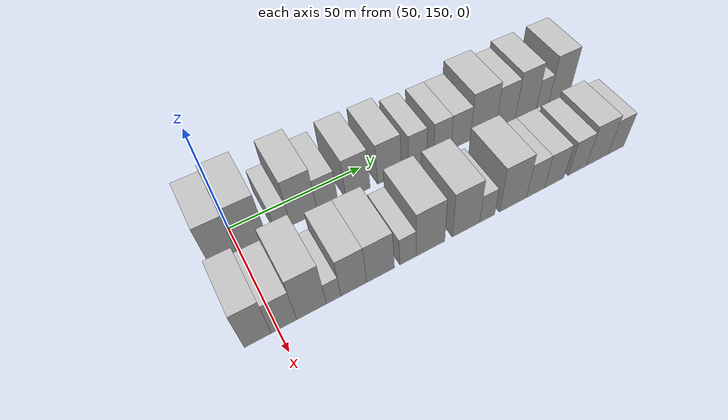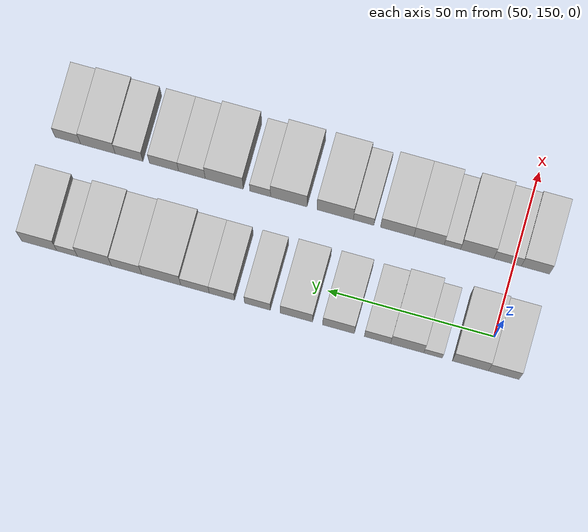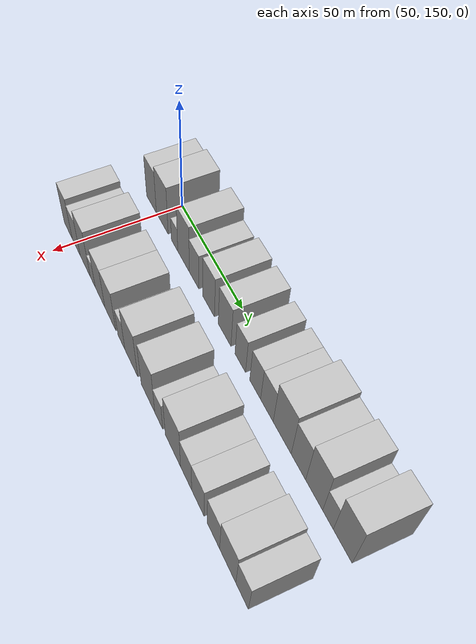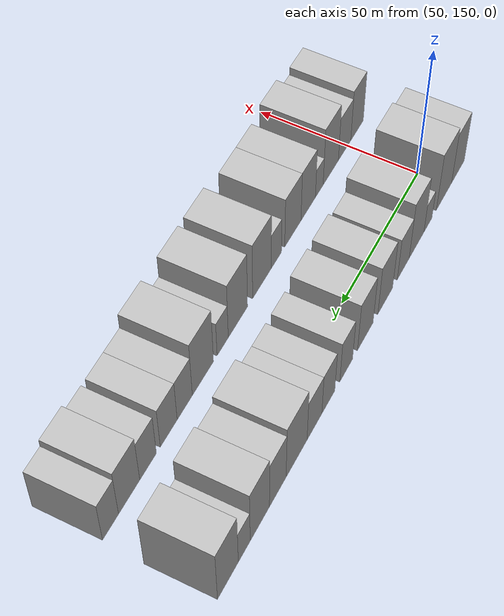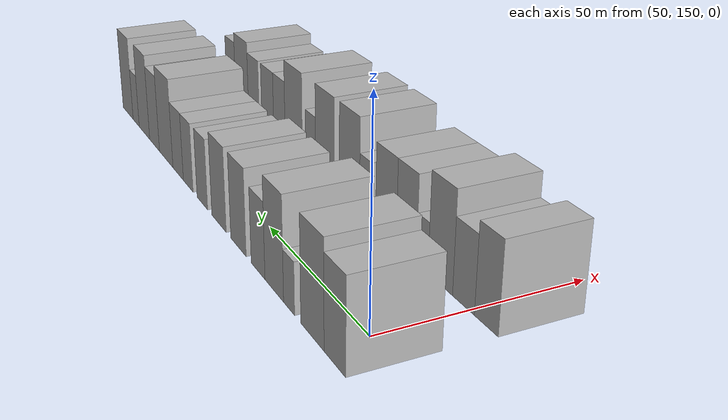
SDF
<sdf version="1.6">
 <world name="default">
  <model name="building_48">
   <static>1</static>
   <pose>50.0000 144.4742 0 0.000000 0.000000 0.000000</pose>
   <link name="link">
    <pose>0 0 10.50 0 0 0</pose>
    <collision name="collision"><geometry><box><size>20.0000 9.2283 21.0000</size></box></geometry></collision>
    <visual name="visual">
     <cast_shadows>0</cast_shadows>
     <geometry><box><size>20.0000 9.2283 21.0000</size></box></geometry>
     <material>
      <script>
       <uri>model://HANNAS_wall/materials/scripts</uri>
       <uri>model://HANNAS_wall/materials/textures</uri>
       <name>vrc/HANNAS_wall</name>
      </script>
     </material>
    </visual>
   </link>
  </model>
  <model name="building_49">
   <static>1</static>
   <pose>50.0000 154.4830 0 0.000000 0.000000 0.000000</pose>
   <link name="link">
    <pose>0 0 12.00 0 0 0</pose>
    <collision name="collision"><geometry><box><size>20.0000 10.7894 24.0000</size></box></geometry></collision>
    <visual name="visual">
     <cast_shadows>0</cast_shadows>
     <geometry><box><size>20.0000 10.7894 24.0000</size></box></geometry>
     <material>
      <script>
       <uri>model://HANNAS_wall/materials/scripts</uri>
       <uri>model://HANNAS_wall/materials/textures</uri>
       <name>vrc/HANNAS_wall</name>
      </script>
     </material>
    </visual>
   </link>
  </model>
  <model name="building_50">
   <static>1</static>
   <pose>50.0000 165.6741 0 0.000000 0.000000 0.000000</pose>
   <link name="link">
    <pose>0 0 6.00 0 0 0</pose>
    <collision name="collision"><geometry><box><size>20.0000 5.5927 12.0000</size></box></geometry></collision>
    <visual name="visual">
     <cast_shadows>0</cast_shadows>
     <geometry><box><size>20.0000 5.5927 12.0000</size></box></geometry>
     <material>
      <script>
       <uri>model://HANNAS_wall/materials/scripts</uri>
       <uri>model://HANNAS_wall/materials/textures</uri>
       <name>vrc/HANNAS_wall</name>
      </script>
     </material>
    </visual>
   </link>
  </model>
  <model name="building_51">
   <static>1</static>
   <pose>50.0000 173.4579 0 0.000000 0.000000 0.000000</pose>
   <link name="link">
    <pose>0 0 12.00 0 0 0</pose>
    <collision name="collision"><geometry><box><size>20.0000 9.9750 24.0000</size></box></geometry></collision>
    <visual name="visual">
     <cast_shadows>0</cast_shadows>
     <geometry><box><size>20.0000 9.9750 24.0000</size></box></geometry>
     <material>
      <script>
       <uri>model://HANNAS_wall/materials/scripts</uri>
       <uri>model://HANNAS_wall/materials/textures</uri>
       <name>vrc/HANNAS_wall</name>
      </script>
     </material>
    </visual>
   </link>
  </model>
  <model name="building_52">
   <static>1</static>
   <pose>50.0000 182.3927 0 0.000000 0.000000 0.000000</pose>
   <link name="link">
    <pose>0 0 9.00 0 0 0</pose>
    <collision name="collision"><geometry><box><size>20.0000 7.8946 18.0000</size></box></geometry></collision>
    <visual name="visual">
     <cast_shadows>0</cast_shadows>
     <geometry><box><size>20.0000 7.8946 18.0000</size></box></geometry>
     <material>
      <script>
       <uri>model://HANNAS_wall/materials/scripts</uri>
       <uri>model://HANNAS_wall/materials/textures</uri>
       <name>vrc/HANNAS_wall</name>
      </script>
     </material>
    </visual>
   </link>
  </model>
  <model name="building_53">
   <static>1</static>
   <pose>50.0000 194.1213 0 0.000000 0.000000 0.000000</pose>
   <link name="link">
    <pose>0 0 10.50 0 0 0</pose>
    <collision name="collision"><geometry><box><size>20.0000 9.5626 21.0000</size></box></geometry></collision>
    <visual name="visual">
     <cast_shadows>0</cast_shadows>
     <geometry><box><size>20.0000 9.5626 21.0000</size></box></geometry>
     <material>
      <script>
       <uri>model://HANNAS_wall/materials/scripts</uri>
       <uri>model://HANNAS_wall/materials/textures</uri>
       <name>vrc/HANNAS_wall</name>
      </script>
     </material>
    </visual>
   </link>
  </model>
  <model name="building_54">
   <static>1</static>
   <pose>50.0000 206.7688 0 0.000000 0.000000 0.000000</pose>
   <link name="link">
    <pose>0 0 10.50 0 0 0</pose>
    <collision name="collision"><geometry><box><size>20.0000 9.7323 21.0000</size></box></geometry></collision>
    <visual name="visual">
     <cast_shadows>0</cast_shadows>
     <geometry><box><size>20.0000 9.7323 21.0000</size></box></geometry>
     <material>
      <script>
       <uri>model://HANNAS_wall/materials/scripts</uri>
       <uri>model://HANNAS_wall/materials/textures</uri>
       <name>vrc/HANNAS_wall</name>
      </script>
     </material>
    </visual>
   </link>
  </model>
  <model name="building_55">
   <static>1</static>
   <pose>50.0000 218.5100 0 0.000000 0.000000 0.000000</pose>
   <link name="link">
    <pose>0 0 9.00 0 0 0</pose>
    <collision name="collision"><geometry><box><size>20.0000 7.7501 18.0000</size></box></geometry></collision>
    <visual name="visual">
     <cast_shadows>0</cast_shadows>
     <geometry><box><size>20.0000 7.7501 18.0000</size></box></geometry>
     <material>
      <script>
       <uri>model://HANNAS_wall/materials/scripts</uri>
       <uri>model://HANNAS_wall/materials/textures</uri>
       <name>vrc/HANNAS_wall</name>
      </script>
     </material>
    </visual>
   </link>
  </model>
  <model name="building_56">
   <static>1</static>
   <pose>50.0000 229.2136 0 0.000000 0.000000 0.000000</pose>
   <link name="link">
    <pose>0 0 9.00 0 0 0</pose>
    <collision name="collision"><geometry><box><size>20.0000 7.6571 18.0000</size></box></geometry></collision>
    <visual name="visual">
     <cast_shadows>0</cast_shadows>
     <geometry><box><size>20.0000 7.6571 18.0000</size></box></geometry>
     <material>
      <script>
       <uri>model://HANNAS_wall/materials/scripts</uri>
       <uri>model://HANNAS_wall/materials/textures</uri>
       <name>vrc/HANNAS_wall</name>
      </script>
     </material>
    </visual>
   </link>
  </model>
  <model name="building_57">
   <static>1</static>
   <pose>50.0000 237.3342 0 0.000000 0.000000 0.000000</pose>
   <link name="link">
    <pose>0 0 9.00 0 0 0</pose>
    <collision name="collision"><geometry><box><size>20.0000 8.5839 18.0000</size></box></geometry></collision>
    <visual name="visual">
     <cast_shadows>0</cast_shadows>
     <geometry><box><size>20.0000 8.5839 18.0000</size></box></geometry>
     <material>
      <script>
       <uri>model://HANNAS_wall/materials/scripts</uri>
       <uri>model://HANNAS_wall/materials/textures</uri>
       <name>vrc/HANNAS_wall</name>
      </script>
     </material>
    </visual>
   </link>
  </model>
  <model name="building_58">
   <static>1</static>
   <pose>50.0000 247.5297 0 0.000000 0.000000 0.000000</pose>
   <link name="link">
    <pose>0 0 12.00 0 0 0</pose>
    <collision name="collision"><geometry><box><size>20.0000 11.8071 24.0000</size></box></geometry></collision>
    <visual name="visual">
     <cast_shadows>0</cast_shadows>
     <geometry><box><size>20.0000 11.8071 24.0000</size></box></geometry>
     <material>
      <script>
       <uri>model://HANNAS_wall/materials/scripts</uri>
       <uri>model://HANNAS_wall/materials/textures</uri>
       <name>vrc/HANNAS_wall</name>
      </script>
     </material>
    </visual>
   </link>
  </model>
  <model name="building_59">
   <static>1</static>
   <pose>50.0000 257.9960 0 0.000000 0.000000 0.000000</pose>
   <link name="link">
    <pose>0 0 10.50 0 0 0</pose>
    <collision name="collision"><geometry><box><size>20.0000 9.1255 21.0000</size></box></geometry></collision>
    <visual name="visual">
     <cast_shadows>0</cast_shadows>
     <geometry><box><size>20.0000 9.1255 21.0000</size></box></geometry>
     <material>
      <script>
       <uri>model://HANNAS_wall/materials/scripts</uri>
       <uri>model://HANNAS_wall/materials/textures</uri>
       <name>vrc/HANNAS_wall</name>
      </script>
     </material>
    </visual>
   </link>
  </model>
  <model name="building_60">
   <static>1</static>
   <pose>50.0000 267.6939 0 0.000000 0.000000 0.000000</pose>
   <link name="link">
    <pose>0 0 12.00 0 0 0</pose>
    <collision name="collision"><geometry><box><size>20.0000 10.2703 24.0000</size></box></geometry></collision>
    <visual name="visual">
     <cast_shadows>0</cast_shadows>
     <geometry><box><size>20.0000 10.2703 24.0000</size></box></geometry>
     <material>
      <script>
       <uri>model://HANNAS_wall/materials/scripts</uri>
       <uri>model://HANNAS_wall/materials/textures</uri>
       <name>vrc/HANNAS_wall</name>
      </script>
     </material>
    </visual>
   </link>
  </model>
  <model name="building_61">
   <static>1</static>
   <pose>50.0000 275.9424 0 0.000000 0.000000 0.000000</pose>
   <link name="link">
    <pose>0 0 7.50 0 0 0</pose>
    <collision name="collision"><geometry><box><size>20.0000 6.2268 15.0000</size></box></geometry></collision>
    <visual name="visual">
     <cast_shadows>0</cast_shadows>
     <geometry><box><size>20.0000 6.2268 15.0000</size></box></geometry>
     <material>
      <script>
       <uri>model://HANNAS_wall/materials/scripts</uri>
       <uri>model://HANNAS_wall/materials/textures</uri>
       <name>vrc/HANNAS_wall</name>
      </script>
     </material>
    </visual>
   </link>
  </model>
  <model name="building_62">
   <static>1</static>
   <pose>50.0000 284.3714 0 0.000000 0.000000 0.000000</pose>
   <link name="link">
    <pose>0 0 12.00 0 0 0</pose>
    <collision name="collision"><geometry><box><size>20.0000 10.6311 24.0000</size></box></geometry></collision>
    <visual name="visual">
     <cast_shadows>0</cast_shadows>
     <geometry><box><size>20.0000 10.6311 24.0000</size></box></geometry>
     <material>
      <script>
       <uri>model://HANNAS_wall/materials/scripts</uri>
       <uri>model://HANNAS_wall/materials/textures</uri>
       <name>vrc/HANNAS_wall</name>
      </script>
     </material>
    </visual>
   </link>
  </model>
  <model name="building_109">
   <static>1</static>
   <pose>82.0000 143.6210 0 0.000000 0.000000 0.000000</pose>
   <link name="link">
    <pose>0 0 10.50 0 0 0</pose>
    <collision name="collision"><geometry><box><size>20.0000 8.5170 21.0000</size></box></geometry></collision>
    <visual name="visual">
     <cast_shadows>0</cast_shadows>
     <geometry><box><size>20.0000 8.5170 21.0000</size></box></geometry>
     <material>
      <script>
       <uri>model://HANNAS_wall/materials/scripts</uri>
       <uri>model://HANNAS_wall/materials/textures</uri>
       <name>vrc/HANNAS_wall</name>
      </script>
     </material>
    </visual>
   </link>
  </model>
  <model name="building_110">
   <static>1</static>
   <pose>82.0000 152.0320 0 0.000000 0.000000 0.000000</pose>
   <link name="link">
    <pose>0 0 9.00 0 0 0</pose>
    <collision name="collision"><geometry><box><size>20.0000 8.3050 18.0000</size></box></geometry></collision>
    <visual name="visual">
     <cast_shadows>0</cast_shadows>
     <geometry><box><size>20.0000 8.3050 18.0000</size></box></geometry>
     <material>
      <script>
       <uri>model://HANNAS_wall/materials/scripts</uri>
       <uri>model://HANNAS_wall/materials/textures</uri>
       <name>vrc/HANNAS_wall</name>
      </script>
     </material>
    </visual>
   </link>
  </model>
  <model name="building_111">
   <static>1</static>
   <pose>82.0000 161.1766 0 0.000000 0.000000 0.000000</pose>
   <link name="link">
    <pose>0 0 12.00 0 0 0</pose>
    <collision name="collision"><geometry><box><size>20.0000 9.9842 24.0000</size></box></geometry></collision>
    <visual name="visual">
     <cast_shadows>0</cast_shadows>
     <geometry><box><size>20.0000 9.9842 24.0000</size></box></geometry>
     <material>
      <script>
       <uri>model://HANNAS_wall/materials/scripts</uri>
       <uri>model://HANNAS_wall/materials/textures</uri>
       <name>vrc/HANNAS_wall</name>
      </script>
     </material>
    </visual>
   </link>
  </model>
  <model name="building_112">
   <static>1</static>
   <pose>82.0000 168.6518 0 0.000000 0.000000 0.000000</pose>
   <link name="link">
    <pose>0 0 6.00 0 0 0</pose>
    <collision name="collision"><geometry><box><size>20.0000 4.9662 12.0000</size></box></geometry></collision>
    <visual name="visual">
     <cast_shadows>0</cast_shadows>
     <geometry><box><size>20.0000 4.9662 12.0000</size></box></geometry>
     <material>
      <script>
       <uri>model://HANNAS_wall/materials/scripts</uri>
       <uri>model://HANNAS_wall/materials/textures</uri>
       <name>vrc/HANNAS_wall</name>
      </script>
     </material>
    </visual>
   </link>
  </model>
  <model name="building_113">
   <static>1</static>
   <pose>82.0000 175.7053 0 0.000000 0.000000 0.000000</pose>
   <link name="link">
    <pose>0 0 10.50 0 0 0</pose>
    <collision name="collision"><geometry><box><size>20.0000 9.1407 21.0000</size></box></geometry></collision>
    <visual name="visual">
     <cast_shadows>0</cast_shadows>
     <geometry><box><size>20.0000 9.1407 21.0000</size></box></geometry>
     <material>
      <script>
       <uri>model://HANNAS_wall/materials/scripts</uri>
       <uri>model://HANNAS_wall/materials/textures</uri>
       <name>vrc/HANNAS_wall</name>
      </script>
     </material>
    </visual>
   </link>
  </model>
  <model name="building_114">
   <static>1</static>
   <pose>82.0000 185.3025 0 0.000000 0.000000 0.000000</pose>
   <link name="link">
    <pose>0 0 10.50 0 0 0</pose>
    <collision name="collision"><geometry><box><size>20.0000 10.0537 21.0000</size></box></geometry></collision>
    <visual name="visual">
     <cast_shadows>0</cast_shadows>
     <geometry><box><size>20.0000 10.0537 21.0000</size></box></geometry>
     <material>
      <script>
       <uri>model://HANNAS_wall/materials/scripts</uri>
       <uri>model://HANNAS_wall/materials/textures</uri>
       <name>vrc/HANNAS_wall</name>
      </script>
     </material>
    </visual>
   </link>
  </model>
  <model name="building_115">
   <static>1</static>
   <pose>82.0000 195.4196 0 0.000000 0.000000 0.000000</pose>
   <link name="link">
    <pose>0 0 7.50 0 0 0</pose>
    <collision name="collision"><geometry><box><size>20.0000 6.1806 15.0000</size></box></geometry></collision>
    <visual name="visual">
     <cast_shadows>0</cast_shadows>
     <geometry><box><size>20.0000 6.1806 15.0000</size></box></geometry>
     <material>
      <script>
       <uri>model://HANNAS_wall/materials/scripts</uri>
       <uri>model://HANNAS_wall/materials/textures</uri>
       <name>vrc/HANNAS_wall</name>
      </script>
     </material>
    </visual>
   </link>
  </model>
  <model name="building_116">
   <static>1</static>
   <pose>82.0000 204.0119 0 0.000000 0.000000 0.000000</pose>
   <link name="link">
    <pose>0 0 12.00 0 0 0</pose>
    <collision name="collision"><geometry><box><size>20.0000 11.0039 24.0000</size></box></geometry></collision>
    <visual name="visual">
     <cast_shadows>0</cast_shadows>
     <geometry><box><size>20.0000 11.0039 24.0000</size></box></geometry>
     <material>
      <script>
       <uri>model://HANNAS_wall/materials/scripts</uri>
       <uri>model://HANNAS_wall/materials/textures</uri>
       <name>vrc/HANNAS_wall</name>
      </script>
     </material>
    </visual>
   </link>
  </model>
  <model name="building_117">
   <static>1</static>
   <pose>82.0000 218.0186 0 0.000000 0.000000 0.000000</pose>
   <link name="link">
    <pose>0 0 12.00 0 0 0</pose>
    <collision name="collision"><geometry><box><size>20.0000 11.0095 24.0000</size></box></geometry></collision>
    <visual name="visual">
     <cast_shadows>0</cast_shadows>
     <geometry><box><size>20.0000 11.0095 24.0000</size></box></geometry>
     <material>
      <script>
       <uri>model://HANNAS_wall/materials/scripts</uri>
       <uri>model://HANNAS_wall/materials/textures</uri>
       <name>vrc/HANNAS_wall</name>
      </script>
     </material>
    </visual>
   </link>
  </model>
  <model name="building_118">
   <static>1</static>
   <pose>82.0000 226.6576 0 0.000000 0.000000 0.000000</pose>
   <link name="link">
    <pose>0 0 7.50 0 0 0</pose>
    <collision name="collision"><geometry><box><size>20.0000 6.2687 15.0000</size></box></geometry></collision>
    <visual name="visual">
     <cast_shadows>0</cast_shadows>
     <geometry><box><size>20.0000 6.2687 15.0000</size></box></geometry>
     <material>
      <script>
       <uri>model://HANNAS_wall/materials/scripts</uri>
       <uri>model://HANNAS_wall/materials/textures</uri>
       <name>vrc/HANNAS_wall</name>
      </script>
     </material>
    </visual>
   </link>
  </model>
  <model name="building_119">
   <static>1</static>
   <pose>82.0000 237.5500 0 0.000000 0.000000 0.000000</pose>
   <link name="link">
    <pose>0 0 12.00 0 0 0</pose>
    <collision name="collision"><geometry><box><size>20.0000 11.5160 24.0000</size></box></geometry></collision>
    <visual name="visual">
     <cast_shadows>0</cast_shadows>
     <geometry><box><size>20.0000 11.5160 24.0000</size></box></geometry>
     <material>
      <script>
       <uri>model://HANNAS_wall/materials/scripts</uri>
       <uri>model://HANNAS_wall/materials/textures</uri>
       <name>vrc/HANNAS_wall</name>
      </script>
     </material>
    </visual>
   </link>
  </model>
  <model name="building_120">
   <static>1</static>
   <pose>82.0000 247.3469 0 0.000000 0.000000 0.000000</pose>
   <link name="link">
    <pose>0 0 9.00 0 0 0</pose>
    <collision name="collision"><geometry><box><size>20.0000 8.0778 18.0000</size></box></geometry></collision>
    <visual name="visual">
     <cast_shadows>0</cast_shadows>
     <geometry><box><size>20.0000 8.0778 18.0000</size></box></geometry>
     <material>
      <script>
       <uri>model://HANNAS_wall/materials/scripts</uri>
       <uri>model://HANNAS_wall/materials/textures</uri>
       <name>vrc/HANNAS_wall</name>
      </script>
     </material>
    </visual>
   </link>
  </model>
  <model name="building_121">
   <static>1</static>
   <pose>82.0000 255.7816 0 0.000000 0.000000 0.000000</pose>
   <link name="link">
    <pose>0 0 9.00 0 0 0</pose>
    <collision name="collision"><geometry><box><size>20.0000 8.7917 18.0000</size></box></geometry></collision>
    <visual name="visual">
     <cast_shadows>0</cast_shadows>
     <geometry><box><size>20.0000 8.7917 18.0000</size></box></geometry>
     <material>
      <script>
       <uri>model://HANNAS_wall/materials/scripts</uri>
       <uri>model://HANNAS_wall/materials/textures</uri>
       <name>vrc/HANNAS_wall</name>
      </script>
     </material>
    </visual>
   </link>
  </model>
  <model name="building_122">
   <static>1</static>
   <pose>82.0000 266.3903 0 0.000000 0.000000 0.000000</pose>
   <link name="link">
    <pose>0 0 9.00 0 0 0</pose>
    <collision name="collision"><geometry><box><size>20.0000 8.4256 18.0000</size></box></geometry></collision>
    <visual name="visual">
     <cast_shadows>0</cast_shadows>
     <geometry><box><size>20.0000 8.4256 18.0000</size></box></geometry>
     <material>
      <script>
       <uri>model://HANNAS_wall/materials/scripts</uri>
       <uri>model://HANNAS_wall/materials/textures</uri>
       <name>vrc/HANNAS_wall</name>
      </script>
     </material>
    </visual>
   </link>
  </model>
  <model name="building_123">
   <static>1</static>
   <pose>82.0000 275.8451 0 0.000000 0.000000 0.000000</pose>
   <link name="link">
    <pose>0 0 10.50 0 0 0</pose>
    <collision name="collision"><geometry><box><size>20.0000 10.4842 21.0000</size></box></geometry></collision>
    <visual name="visual">
     <cast_shadows>0</cast_shadows>
     <geometry><box><size>20.0000 10.4842 21.0000</size></box></geometry>
     <material>
      <script>
       <uri>model://HANNAS_wall/materials/scripts</uri>
       <uri>model://HANNAS_wall/materials/textures</uri>
       <name>vrc/HANNAS_wall</name>
      </script>
     </material>
    </visual>
   </link>
  </model>
  <model name="building_124">
   <static>1</static>
   <pose>82.0000 284.9651 0 0.000000 0.000000 0.000000</pose>
   <link name="link">
    <pose>0 0 9.00 0 0 0</pose>
    <collision name="collision"><geometry><box><size>20.0000 7.7559 18.0000</size></box></geometry></collision>
    <visual name="visual">
     <cast_shadows>0</cast_shadows>
     <geometry><box><size>20.0000 7.7559 18.0000</size></box></geometry>
     <material>
      <script>
       <uri>model://HANNAS_wall/materials/scripts</uri>
       <uri>model://HANNAS_wall/materials/textures</uri>
       <name>vrc/HANNAS_wall</name>
      </script>
     </material>
    </visual>
   </link>
  </model>
 </world>
</sdf>
